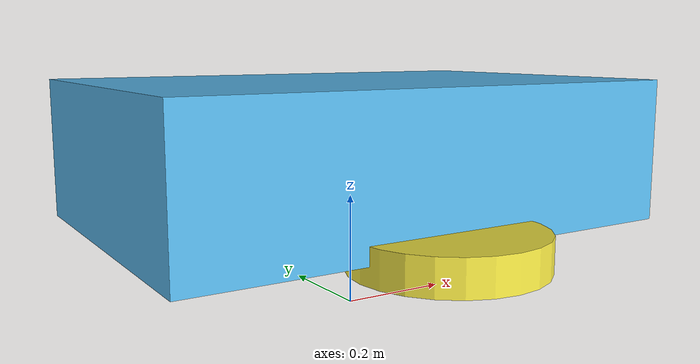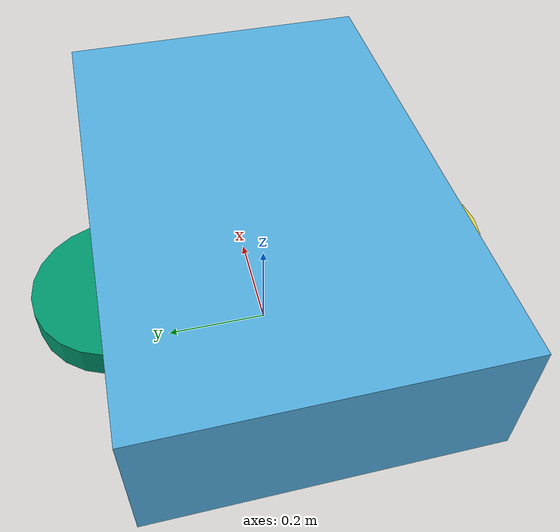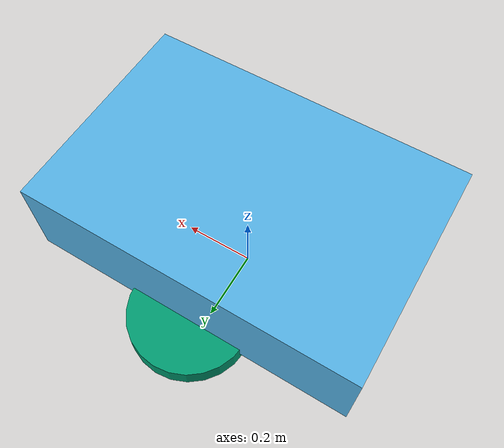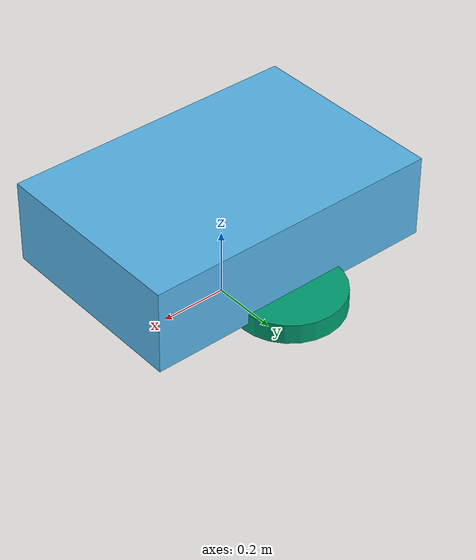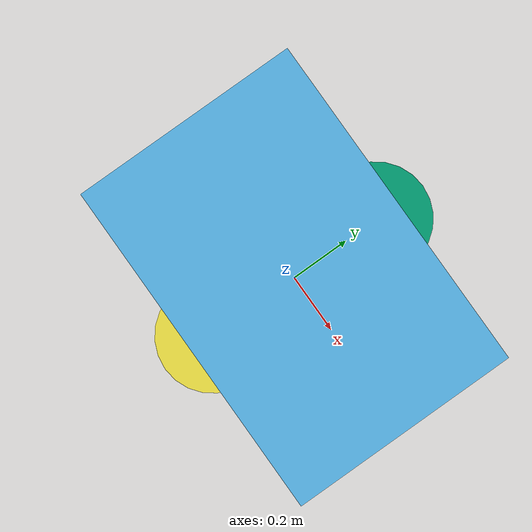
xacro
<?xml version="1.0"?>
<robot xmlns:xacro="http://www.ros.org/wiki/xacro" name="wheelchair">

  <!-- PARAMETERS -->

  <xacro:property name="wheel_radius" value="0.16"/>
  <xacro:property name="wheel_width" value="0.06"/>
  <xacro:property name="wheel_separation" value="0.56"/>

  <xacro:property name="base_length" value="0.9"/>
  <xacro:property name="base_width" value="0.6"/>
  <xacro:property name="base_height" value="0.25"/>

  <xacro:property name="base_mass" value="105.0"/>
  <xacro:property name="wheel_mass" value="2.0"/>

  <xacro:property name="wheel_mu1" value="1.0"/>
  <xacro:property name="wheel_mu2" value="1.0"/>

  <!-- INERTIA MACRO -->

  <xacro:macro name="cylinder_inertia" params="m r h">
    <inertia
      ixx="${m*(3*r*r + h*h)/12}"
      ixy="0" ixz="0"
      iyy="${m*(3*r*r + h*h)/12}"
      iyz="0"
      izz="${m*r*r/2}"/>
  </xacro:macro>

  <xacro:macro name="box_inertia" params="m x y z">
    <inertia
      ixx="${m*(y*y + z*z)/12}"
      ixy="0" ixz="0"
      iyy="${m*(x*x + z*z)/12}"
      iyz="0"
      izz="${m*(x*x + y*y)/12}"/>
  </xacro:macro>

  <!-- BASE -->

  <link name="base_footprint"/>

  <joint name="base_footprint_to_base_link" type="fixed">
    <parent link="base_footprint"/>
    <child link="base_link"/>
    <origin xyz="0 0 ${wheel_radius}" rpy="0 0 0"/>
  </joint>

  <link name="base_link">
    <visual>
      <origin xyz="0 0 ${base_height/2}" rpy="0 0 0"/>
      <geometry>
        <box size="${base_length} ${base_width} ${base_height}"/>
      </geometry>
    </visual>

    <collision>
      <origin xyz="0 0 ${base_height/2}" rpy="0 0 0"/>
      <geometry>
        <box size="${base_length} ${base_width} ${base_height}"/>
      </geometry>
    </collision>

    <inertial>
      <origin xyz="0 0 ${base_height/2}" rpy="0 0 0"/>
      <mass value="${base_mass}"/>
      <xacro:box_inertia
        m="${base_mass}"
        x="${base_length}"
        y="${base_width}"
        z="${base_height}"/>
    </inertial>
  </link>

  <!-- YOUR WHEEL MACRO (UNCHANGED) -->

  <xacro:macro name="wheel" params="prefix reflect">
    <link name="${prefix}_wheel_link">

      <visual>
        <origin xyz="0 0 0" rpy="0 0 0"/>
        <geometry>
          <cylinder radius="${wheel_radius}" length="${wheel_width}"/>
        </geometry>
      </visual>

      <collision>
        <origin xyz="0 0 0" rpy="0 0 0"/>
        <geometry>
          <cylinder radius="${wheel_radius}" length="${wheel_width}"/>
        </geometry>
      </collision>

      <inertial>
        <origin xyz="0 0 0"/>
        <mass value="${wheel_mass}"/>
        <xacro:cylinder_inertia
          m="${wheel_mass}"
          r="${wheel_radius}"
          h="${wheel_width}"/>
      </inertial>
    </link>

    <joint name="${prefix}_wheel_joint" type="continuous">
      <parent link="base_link"/>
      <child link="${prefix}_wheel_link"/>
      <origin xyz="0 ${reflect * wheel_separation/2} 0"/>
      <axis xyz="0 0 1"/>
      <dynamics damping="0.2"/>
    </joint>

    <gazebo reference="${prefix}_wheel_link">
      <mu1>1.0</mu1>
      <mu2>1.0</mu2>
      <kp>1000000</kp>
      <kd>100</kd>
    </gazebo>
  </xacro:macro>

  <!-- INSTANTIATE WHEELS -->

  <xacro:wheel prefix="left" reflect="1"/>
  <xacro:wheel prefix="right" reflect="-1"/>

  <!-- DIFF DRIVE PLUGIN -->

  <gazebo>
    <plugin
      filename="gz-sim-diff-drive-system"
      name="gz::sim::systems::DiffDrive">

      <left_joint>left_wheel_joint</left_joint>
      <right_joint>right_wheel_joint</right_joint>

      <wheel_separation>${wheel_separation}</wheel_separation>
      <wheel_radius>${wheel_radius}</wheel_radius>

      <topic>cmd_vel</topic>
      <odom_topic>odom</odom_topic>

      <frame_id>odom</frame_id>
      <child_frame_id>base_footprint</child_frame_id>

      <max_linear_velocity>1.5</max_linear_velocity>
      <min_linear_velocity>-1.5</min_linear_velocity>
      <max_angular_velocity>1.0</max_angular_velocity>
      <min_angular_velocity>-1.0</min_angular_velocity>
    </plugin>
  </gazebo>

</robot>
